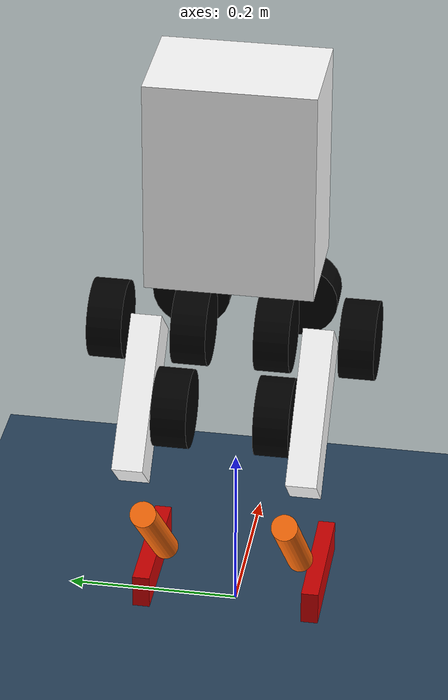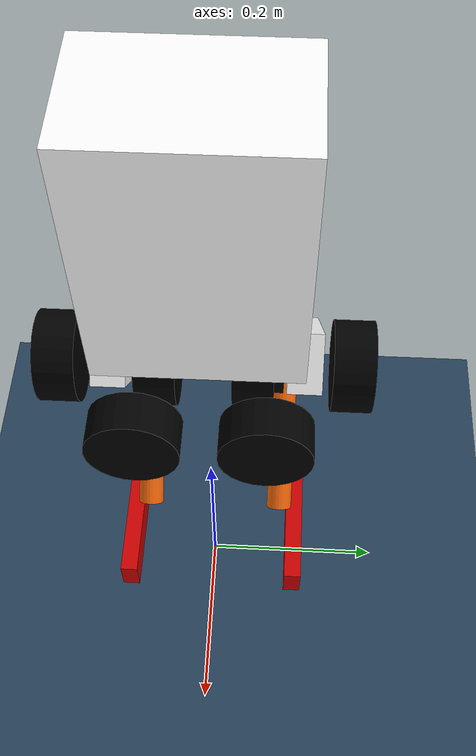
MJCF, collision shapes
<mujoco model="hector_description">
  <compiler angle="radian" meshdir="../meshes/" />
  <statistic meansize="0.136507" extent="0.807636" center="-0.0411915 -9.89338e-05 -0.229264" />
  <option timestep="0.001"/>
  <asset>
    <mesh name="body" file="body.STL" />
    <mesh name="L_hip1" file="L_hip1.STL" />
    <mesh name="L_hip2" file="L_hip2.STL" />
    <mesh name="L_thigh" file="L_thigh.STL" />
    <mesh name="L_calf" file="L_calf.STL" />
    <mesh name="L_foot" file="L_foot.STL" />
    <mesh name="R_hip1" file="R_hip1.STL" />
    <mesh name="R_hip2" file="R_hip2.STL" />
    <mesh name="R_thigh" file="R_thigh.STL" />
    <mesh name="R_calf" file="R_calf.STL" />
    <mesh name="R_foot" file="R_foot.STL" />
    <texture name="grid" type="2d" builtin="checker" rgb1=".1 .2 .3"
      rgb2=".2 .3 .4" width="300" height="300" />
    <material name="grid" texture="grid" texrepeat="8 8" reflectance=".1" />
  </asset>
  <contact>
    <exclude name="1" body1 = "L_hip2" body2="L_thigh"/>
  </contact>
  <worldbody>
    <light name="top" pos="0 0 10" castshadow="false" />
    <geom size="10 10 .01" type="plane" material="grid" />
    <body name="base" pos="0.0 0. 0.58">
      <inertial pos="0. 0. 0." euler="0. 0. 0."
        mass="5.7" diaginertia="0.0463619 0.036636 0.024569" />
      <freejoint/>
      <geom type="mesh" contype="0" conaffinity="0" group="1" density="0" rgba="1 1 1 1" mesh="body" />
      <geom size="0.0625 0.095 0.124" type="box" rgba="1 1 1 0" />
      <geom size="0.0005 0.0005 0.0005" type="box" contype="0" conaffinity="0" group="1" density="0"
        rgba="0.8 0 0 0" />
      <geom size="0.0005 0.0005 0.0005" type="box" rgba="0.8 0 0 0" />
      <site name="imu" pos="0 0 0"/>
      <body name="L_hip" pos="0 0.047 -0.1265">
        <inertial pos="0.0651881 0.0105682 -0.05877" quat="-0.0733308 0.865238 0.13671 0.476756"
          mass="0.874" diaginertia="0.00147219 0.00132639 0.000517101" />
        <joint name="L_hip_joint" pos="0 0 0" axis="0 0 1" range="-0.523599 0.523599" damping="0.1" />
        <geom type="mesh" contype="0" conaffinity="0" group="1" density="0"
          rgba="1 0.423529 0.0392157 1" mesh="L_hip1" />
        <geom size="5e-05 5e-05 5e-05" pos="0.015 0 -0.002" type="box" rgba="1 0.423529 0.0392157 0" />
        <geom size="0.045 0.02" pos="0.079 0.015 -0.0705" quat="0.707107 0 0.707107 0"
          rgba="0 0 0 0 "
          type="cylinder" />
        <body name="L_hip2" pos="0.0465 0.015 -0.0705">
          <inertial pos="-0.0565847 -0.0143919 0" quat="0.490371 0.490371 0.509447 0.509447"
            mass="0.745" diaginertia="0.000770832 0.000552938 0.000493077" />
          <joint name="L_hip2_joint" pos="0 0 0" axis="1 0 0" range="-0.523599 0.523599"
            damping="0.1" />
          <geom type="mesh" contype="0" conaffinity="0" group="1" density="0" rgba="0.8 0 0 1"
            mesh="L_hip2" />
          <geom size="5e-06 5e-06 5e-06" pos="-0.1 0 0" type="box" rgba="0.8 0 0 0" />
          <geom size="0.045 0.02" pos="-0.06 -0.015 0" quat="0.707107 -0.707107 0 0" type="cylinder"
            rgba="0 0 0 0 " />
          <body name="L_thigh" pos="-0.06 0.018 0" quat="0.92388 0 0.382683 0">
            <inertial pos="-4.85963e-05 0.0199702 -0.0592828"
              quat="0.98238 -0.186894 0.000253273 0.000716486" mass="1.942"
              diaginertia="0.0111784 0.0106783 0.00282909" />
            <joint name="L_thigh_joint" pos="0 0 0" axis="0 1 0" range="-3.14 3.14" damping="0.1" />
            <geom type="mesh" contype="0" conaffinity="0" group="1" density="0" rgba="1 1 1 1"
              mesh="L_thigh" />
            <geom size="0.03 0.0175 0.09" pos="0 0.0175 -0.09" type="box" rgba="1 1 1 0" />
            <geom size="0.045 0.02" pos="0 0.0625 0" quat="0.707107 -0.707107 0 0" type="cylinder"
              rgba="0 0 0 0 " />
            <geom size="0.045 0.02" pos="0 -0.0225 -0.097" quat="0.707107 -0.707107 0 0"
              type="cylinder" rgba="0 0 0 0 " />
            <body name="L_calf" pos="0 0 -0.22" quat="0.707107 0 -0.707107 0">
              <inertial pos="0 0.020417 -0.1141" mass="0.303"
                diaginertia="0.001911 0.00191038 6.8352e-05" />
              <joint name="L_calf_joint" pos="0 0 0" axis="0 1 0" range="-3.14 3.14" damping="0.1" />
              <geom type="mesh" contype="0" conaffinity="0" group="1" density="0"
                rgba="1 0.423529 0.0392157 1" mesh="L_calf" />
              <geom size="0.015 0.1" pos="0 0 -0.11" type="cylinder" rgba="1 0.423529 0.0392157 0" />
              <body name="L_toe" pos="0 0 -0.22" quat="0.92388 0 0.382683 0">
                <inertial pos="0.010569 0.017949 -0.017118" quat="0.5 0.5 0.5 0.5" mass="0.214"
                  diaginertia="0.000290752 0.000249491 5.7298e-05" />
                <joint name="L_toe_joint" pos="0 0 0" axis="0 1 0" range="-1.4 1.4" damping="0.1" />
                <geom type="mesh" contype="0" conaffinity="0" group="1" density="0" rgba="0.8 0 0 1"
                  mesh="L_foot" />
                <geom size="0.075 0.01 0.02" pos="0.01 0.0194 -0.02" type="box" rgba="0.8 0 0 0" />
              </body>
            </body>
          </body>
        </body>
      </body>
      <body name="R_hip" pos="0 -0.047 -0.1265">
        <inertial pos="0.0651881 -0.011743 -0.05877" quat="0.054396 0.871604 -0.102394 0.476301"
          mass="0.874" diaginertia="0.00144737 0.00130361 0.000518878" />
        <joint name="R_hip_joint" pos="0 0 0" axis="0 0 1" range="-0.523599 0.523599" damping="0.1" />
        <geom type="mesh" contype="0" conaffinity="0" group="1" density="0"
          rgba="1 0.423529 0.0392157 1" mesh="R_hip1" />
        <geom size="5e-05 5e-05 5e-05" pos="0.015 0 -0.002" type="box" rgba="1 0.423529 0.0392157 0" />
        <geom size="0.045 0.02" pos="0.079 -0.015 -0.0705" quat="0.707107 0 0.707107 0"
          rgba="0 0 0 0 "
          type="cylinder" />
        <body name="R_hip2" pos="0.0465 -0.015 -0.0705">
          <inertial pos="-0.0565847 0.0117826 0" quat="0.554078 0.554078 0.439315 0.439315"
            mass="0.745" diaginertia="0.000783544 0.000603818 0.000531245" />
          <joint name="R_hip2_joint" pos="0 0 0" axis="1 0 0" range="-0.523599 0.523599"
            damping="0.1" />
          <geom type="mesh" contype="0" conaffinity="0" group="1" density="0" rgba="0.8 0 0 1"
            mesh="R_hip2" />
          <geom size="5e-06 5e-06 5e-06" pos="-0.1 0 0" type="box" rgba="0.8 0 0 0" />
          <geom size="0.045 0.02" pos="-0.06 0.015 0" quat="0.707107 -0.707107 0 0" type="cylinder"
            rgba="0 0 0 0 " />
          <body name="R_thigh" pos="-0.06 -0.018 0" quat="0.92388 0 0.382683 0">
            <inertial pos="-4.85963e-05 -0.0199702 -0.0592828"
              quat="0.98238 0.186894 0.000253273 -0.000716486" mass="1.942"
              diaginertia="0.0111784 0.0106783 0.00282909" />
            <joint name="R_thigh_joint" pos="0 0 0" axis="0 1 0" range="-3.14 3.14" damping="0.1" />
            <geom type="mesh" contype="0" conaffinity="0" group="1" density="0" rgba="1 1 1 1"
              mesh="R_thigh" />
            <geom size="0.03 0.0175 0.09" pos="0 -0.0175 -0.09" type="box" rgba="1 1 1 0" />
            <geom size="0.045 0.02" pos="0 -0.0625 0" quat="0.707107 -0.707107 0 0" type="cylinder"
              rgba="0 0 0 0 " />
            <geom size="0.045 0.02" pos="0 0.0225 -0.097" quat="0.707107 -0.707107 0 0"
              rgba="0 0 0 0 "
              type="cylinder" />
            <body name="R_calf" pos="0 0 -0.22" quat="0.707107 0 -0.707107 0">
              <inertial pos="0 -0.020417 -0.1141" mass="0.303"
                diaginertia="0.001911 0.00191038 6.8352e-05" />
              <joint name="R_calf_joint" pos="0 0 0" axis="0 1 0" range="-3.14 3.14" damping="0.1" />
              <geom type="mesh" contype="0" conaffinity="0" group="1" density="0"
                rgba="1 0.423529 0.0392157 1" mesh="R_calf" />
              <geom size="0.015 0.1" pos="0 0 -0.11" type="cylinder" rgba="1 0.423529 0.0392157 0" />
              <body name="R_toe" pos="0 0 -0.22" quat="0.92388 0 0.382683 0">
                <inertial pos="0.010569 -0.017949 -0.017118" quat="0.5 0.5 0.5 0.5" mass="0.214"
                  diaginertia="0.000290752 0.000249491 5.7298e-05" />
                <joint name="R_toe_joint" pos="0 0 0" axis="0 1 0" range="-1.4 1.4" damping="0.1" />
                <geom type="mesh" contype="0" conaffinity="0" group="1" density="0" rgba="0.8 0 0 1"
                  mesh="R_foot" />
                <geom size="0.075 0.01 0.02" pos="0.01 -0.0194 -0.02" type="box" rgba="0.8 0 0 0" />
              </body>
            </body>
          </body>
        </body>
      </body>
    </body>

  </worldbody>
  <actuator>
    <motor name="L_hip" gear="1" joint="L_hip_joint" />
    <motor name="L_hip2" gear="1" joint="L_hip2_joint" />
    <motor name="L_thigh" gear="1" joint="L_thigh_joint" />
    <motor name="L_calf" gear="1" joint="L_calf_joint" />
    <motor name="L_toe" gear="1" joint="L_toe_joint" />
    <motor name="R_hip" gear="1" joint="R_hip_joint" />
    <motor name="R_hip2" gear="1" joint="R_hip2_joint" />
    <motor name="R_thigh" gear="1" joint="R_thigh_joint" />
    <motor name="R_calf" gear="1" joint="R_calf_joint" />
    <motor name="R_toe" gear="1" joint="R_toe_joint" />
  </actuator>
  <sensor>
    <jointpos name="L_hip_pos" joint="L_hip_joint" />
    <jointpos name="L_hip2_pos" joint="L_hip2_joint" />
    <jointpos name="L_thigh_pos" joint="L_thigh_joint" />
    <jointpos name="L_calf_pos" joint="L_calf_joint" />
    <jointpos name="L_toe_pos" joint="L_toe_joint" />
    <jointpos name="R_hip_pos" joint="R_hip_joint" />
    <jointpos name="R_hip2_pos" joint="R_hip2_joint" />
    <jointpos name="R_thigh_pos" joint="R_thigh_joint" />
    <jointpos name="R_calf_pos" joint="R_calf_joint" />
    <jointpos name="R_toe_pos" joint="R_toe_joint" />
    <jointvel name="L_hip_vel" joint="L_hip_joint" />
    <jointvel name="L_hip2_vel" joint="L_hip2_joint" />
    <jointvel name="L_thigh_vel" joint="L_thigh_joint" />
    <jointvel name="L_calf_vel" joint="L_calf_joint" />
    <jointvel name="L_toe_vel" joint="L_toe_joint" />
    <jointvel name="R_hip_vel" joint="R_hip_joint" />
    <jointvel name="R_hip2_vel" joint="R_hip2_joint" />
    <jointvel name="R_thigh_vel" joint="R_thigh_joint" />
    <jointvel name="R_calf_vel" joint="R_calf_joint" />
    <jointvel name="R_toe_vel" joint="R_toe_joint" />
    <accelerometer name="BodyAcc" site="imu"/>
    <velocimeter name="BodyVel" site="imu"/>
    <gyro name="BodyGyro" site="imu"/>
    <framepos name="BodyPos" objtype="site" objname="imu"/>
    <framequat name="BodyQuat" objtype="site" objname="imu"/>
  </sensor>
</mujoco>
